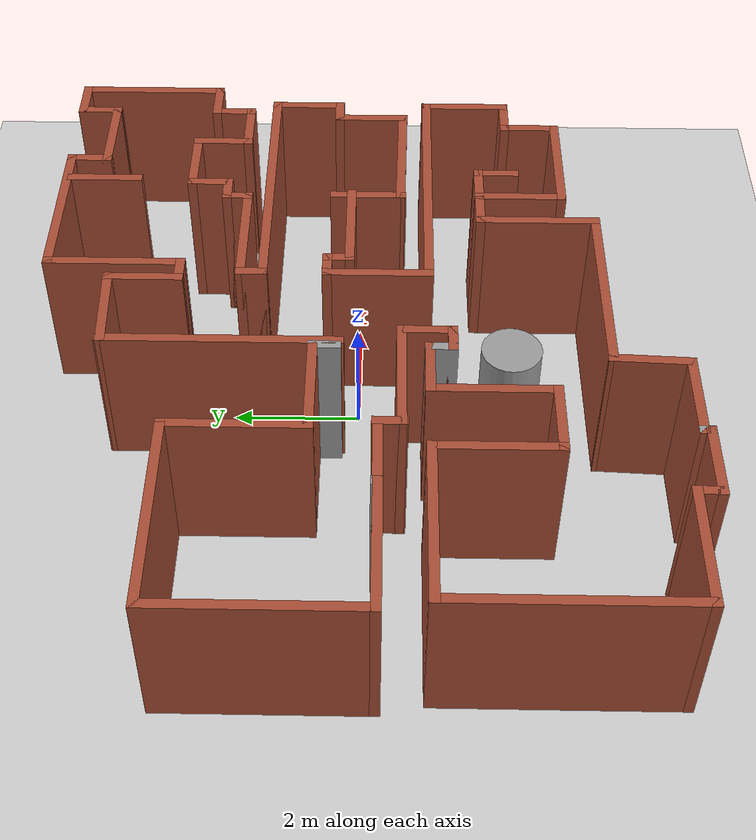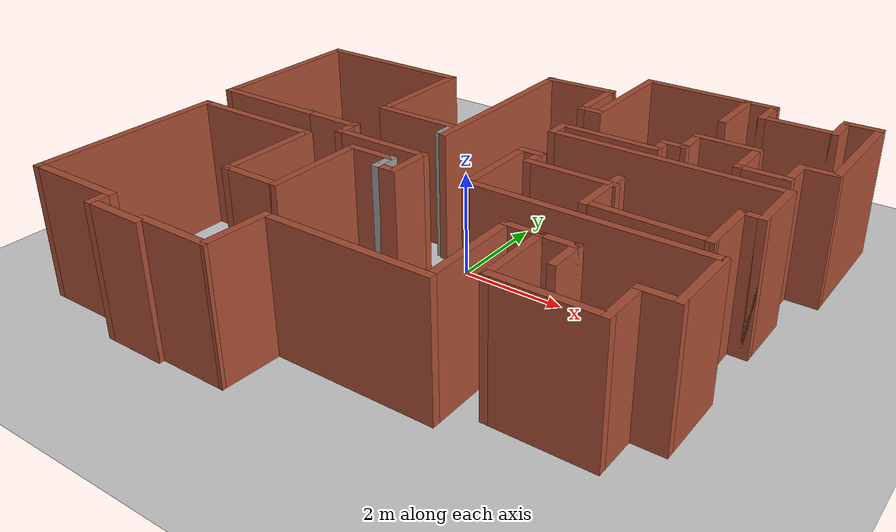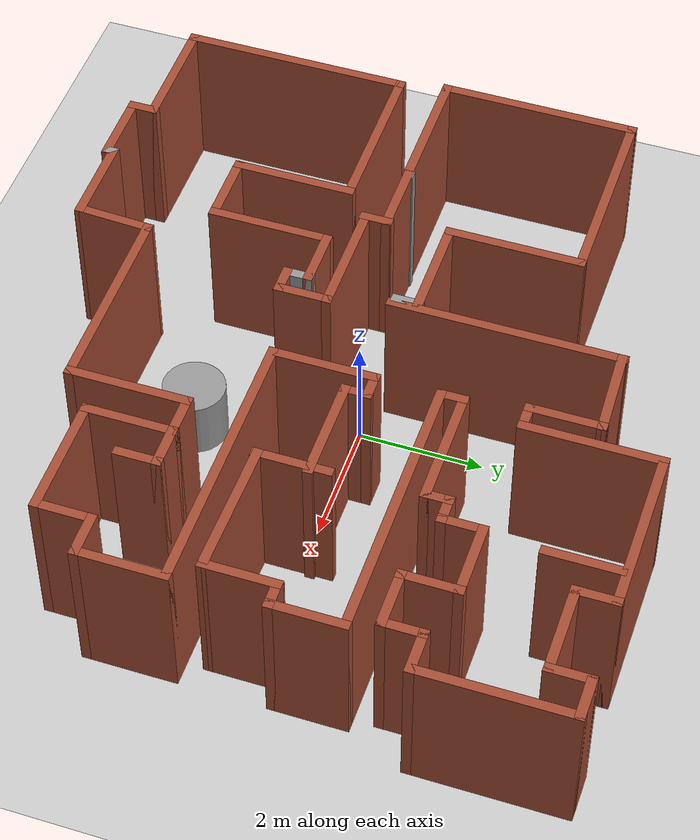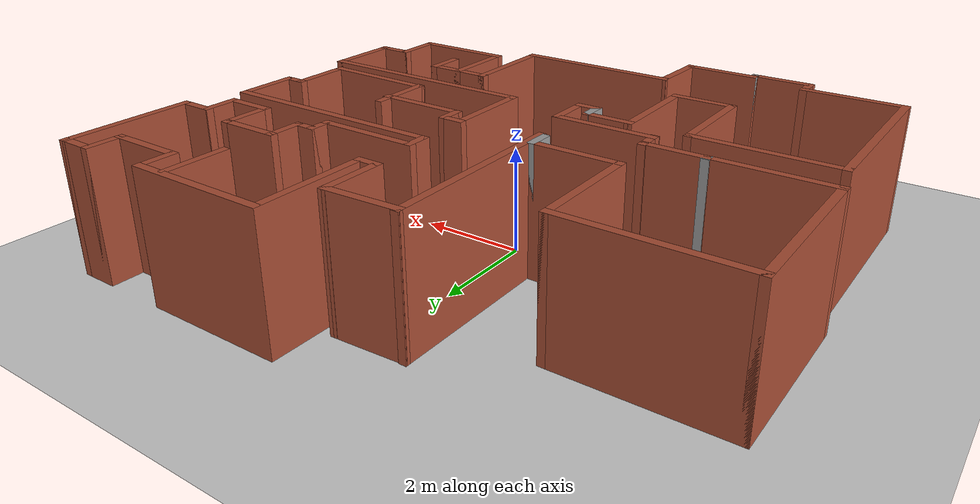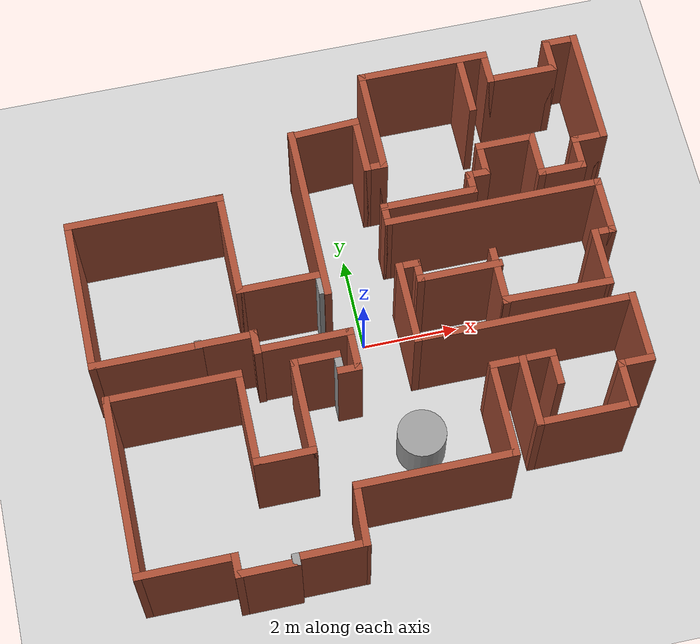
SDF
<sdf version="1.6">
 <world name="default">
  <model name="ground_plane">
   <static>1</static>
   <link name="link">
    <collision name="collision">
     <geometry><plane><normal>0 0 1</normal><size>100 100</size></plane></geometry>
     <surface><friction><ode><mu>100</mu><mu2>50</mu2></ode></friction></surface>
    </collision>
    <visual name="visual">
     <cast_shadows>0</cast_shadows>
     <geometry><plane><normal>0 0 1</normal><size>100 100</size></plane></geometry>
     <material>
      <script><uri>file://media/materials/scripts/gazebo.material</uri><name>Gazebo/Grey</name></script>
     </material>
    </visual>
   </link>
  </model>
  <model name="map_24">
   <pose>0.051596 -0.058533 0 0 -0 0</pose>
   <link name="Wall_0">
    <collision name="Wall_0_Collision">
     <geometry><box><size>1.5 0.15 2.5</size></box></geometry>
     <pose>0 0 1.25 0 -0 0</pose>
    </collision>
    <visual name="Wall_0_Visual">
     <pose>0 0 1.25 0 -0 0</pose>
     <geometry><box><size>1.5 0.15 2.5</size></box></geometry>
     <material>
      <script><uri>file://media/materials/scripts/gazebo.material</uri><name>Gazebo/Bricks</name></script>
      <ambient>1 1 1 1</ambient>
     </material>
     <meta><layer>0</layer></meta>
    </visual>
    <pose>-1.75 -4.875 0 0 -0 3.14159</pose>
   </link>
   <link name="Wall_1">
    <collision name="Wall_1_Collision">
     <geometry><box><size>0.25 0.15 2.5</size></box></geometry>
     <pose>0 0 1.25 0 -0 0</pose>
    </collision>
    <visual name="Wall_1_Visual">
     <pose>0 0 1.25 0 -0 0</pose>
     <geometry><box><size>0.25 0.15 2.5</size></box></geometry>
     <material>
      <script><uri>file://media/materials/scripts/gazebo.material</uri><name>Gazebo/Grey</name></script>
      <ambient>1 1 1 1</ambient>
     </material>
     <meta><layer>0</layer></meta>
    </visual>
    <pose>-2.425 -4.925 0 0 -0 -1.5708</pose>
   </link>
   <link name="Wall_10">
    <collision name="Wall_10_Collision">
     <geometry><box><size>1 0.15 2.5</size></box></geometry>
     <pose>0 0 1.25 0 -0 0</pose>
    </collision>
    <visual name="Wall_10_Visual">
     <pose>0 0 1.25 0 -0 0</pose>
     <geometry><box><size>1 0.15 2.5</size></box></geometry>
     <material>
      <script><uri>file://media/materials/scripts/gazebo.material</uri><name>Gazebo/Bricks</name></script>
      <ambient>1 1 1 1</ambient>
     </material>
     <meta><layer>0</layer></meta>
    </visual>
    <pose>-1.25 -1.025 0 0 -0 0</pose>
   </link>
   <link name="Wall_11">
    <collision name="Wall_11_Collision">
     <geometry><box><size>0.5 0.15 2.5</size></box></geometry>
     <pose>0 0 1.25 0 -0 0</pose>
    </collision>
    <visual name="Wall_11_Visual">
     <pose>0 0 1.25 0 -0 0</pose>
     <geometry><box><size>0.5 0.15 2.5</size></box></geometry>
     <material>
      <script><uri>file://media/materials/scripts/gazebo.material</uri><name>Gazebo/Grey</name></script>
      <ambient>1 1 1 1</ambient>
     </material>
     <meta><layer>0</layer></meta>
    </visual>
    <pose>-0.825 -1.2 0 0 -0 -1.5708</pose>
   </link>
   <link name="Wall_12">
    <collision name="Wall_12_Collision">
     <geometry><box><size>0.5 0.15 2.5</size></box></geometry>
     <pose>0 0 1.25 0 -0 0</pose>
    </collision>
    <visual name="Wall_12_Visual">
     <pose>0 0 1.25 0 -0 0</pose>
     <geometry><box><size>0.5 0.15 2.5</size></box></geometry>
     <material>
      <script><uri>file://media/materials/scripts/gazebo.material</uri><name>Gazebo/Bricks</name></script>
      <ambient>1 1 1 1</ambient>
     </material>
     <meta><layer>0</layer></meta>
    </visual>
    <pose>-0.65 -1.375 0 0 -0 0</pose>
   </link>
   <link name="Wall_13">
    <collision name="Wall_13_Collision">
     <geometry><box><size>0.899432 0.15 2.5</size></box></geometry>
     <pose>0 0 1.25 0 -0 0</pose>
    </collision>
    <visual name="Wall_13_Visual">
     <pose>0 0 1.25 0 -0 0</pose>
     <geometry><box><size>0.899432 0.15 2.5</size></box></geometry>
     <material>
      <script><uri>file://media/materials/scripts/gazebo.material</uri><name>Gazebo/Bricks</name></script>
      <ambient>1 1 1 1</ambient>
     </material>
     <meta><layer>0</layer></meta>
    </visual>
    <pose>-0.475 -1.00028 0 0 -0 1.5708</pose>
   </link>
   <link name="Wall_14">
    <collision name="Wall_14_Collision">
     <geometry><box><size>2 0.15 2.5</size></box></geometry>
     <pose>0 0 1.25 0 -0 0</pose>
    </collision>
    <visual name="Wall_14_Visual">
     <pose>0 0 1.25 0 -0 0</pose>
     <geometry><box><size>2 0.15 2.5</size></box></geometry>
     <material>
      <script><uri>file://media/materials/scripts/gazebo.material</uri><name>Gazebo/Bricks</name></script>
      <ambient>1 1 1 1</ambient>
     </material>
     <meta><layer>0</layer></meta>
    </visual>
    <pose>-1.4 -0.605454 0 0 -0 3.14159</pose>
   </link>
   <link name="Wall_15">
    <collision name="Wall_15_Collision">
     <geometry><box><size>0.528751 0.15 2.5</size></box></geometry>
     <pose>0 0 1.25 0 -0 0</pose>
    </collision>
    <visual name="Wall_15_Visual">
     <pose>0 0 1.25 0 -0 0</pose>
     <geometry><box><size>0.528751 0.15 2.5</size></box></geometry>
     <material>
      <script><uri>file://media/materials/scripts/gazebo.material</uri><name>Gazebo/Bricks</name></script>
      <ambient>1 1 1 1</ambient>
     </material>
     <meta><layer>0</layer></meta>
    </visual>
    <pose>-2.325 -0.436192 0 0 -0 1.5708</pose>
   </link>
   <link name="Wall_16">
    <collision name="Wall_16_Collision">
     <geometry><box><size>1.25 0.15 2.5</size></box></geometry>
     <pose>0 0 1.25 0 -0 0</pose>
    </collision>
    <visual name="Wall_16_Visual">
     <pose>0 0 1.25 0 -0 0</pose>
     <geometry><box><size>1.25 0.15 2.5</size></box></geometry>
     <material>
      <script><uri>file://media/materials/scripts/gazebo.material</uri><name>Gazebo/Bricks</name></script>
      <ambient>1 1 1 1</ambient>
     </material>
     <meta><layer>0</layer></meta>
    </visual>
    <pose>-2.875 -0.266931 0 0 -0 3.14159</pose>
   </link>
   <link name="Wall_17">
    <collision name="Wall_17_Collision">
     <geometry><box><size>0.178183 0.15 2.5</size></box></geometry>
     <pose>0 0 1.25 0 -0 0</pose>
    </collision>
    <visual name="Wall_17_Visual">
     <pose>0 0 1.25 0 -0 0</pose>
     <geometry><box><size>0.178183 0.15 2.5</size></box></geometry>
     <material>
      <script><uri>file://media/materials/scripts/gazebo.material</uri><name>Gazebo/Grey</name></script>
      <ambient>1 1 1 1</ambient>
     </material>
     <meta><layer>0</layer></meta>
    </visual>
    <pose>-3.425 -0.260908 0 0 -0 -1.5708</pose>
   </link>
   <link name="Wall_19">
    <collision name="Wall_19_Collision">
     <geometry><box><size>2.25 0.15 2.5</size></box></geometry>
     <pose>0 0 1.25 0 -0 0</pose>
    </collision>
    <visual name="Wall_19_Visual">
     <pose>0 0 1.25 0 -0 0</pose>
     <geometry><box><size>2.25 0.15 2.5</size></box></geometry>
     <material>
      <script><uri>file://media/materials/scripts/gazebo.material</uri><name>Gazebo/Bricks</name></script>
      <ambient>1 1 1 1</ambient>
     </material>
     <meta><layer>0</layer></meta>
    </visual>
    <pose>-4.475 -0.275 0 0 -0 3.14159</pose>
   </link>
   <link name="Wall_2">
    <collision name="Wall_2_Collision">
     <geometry><box><size>1.25 0.15 2.5</size></box></geometry>
     <pose>0 0 1.25 0 -0 0</pose>
    </collision>
    <visual name="Wall_2_Visual">
     <pose>0 0 1.25 0 -0 0</pose>
     <geometry><box><size>1.25 0.15 2.5</size></box></geometry>
     <material>
      <script><uri>file://media/materials/scripts/gazebo.material</uri><name>Gazebo/Bricks</name></script>
      <ambient>1 1 1 1</ambient>
     </material>
     <meta><layer>0</layer></meta>
    </visual>
    <pose>-2.975 -4.975 0 0 -0 3.14159</pose>
   </link>
   <link name="Wall_20">
    <collision name="Wall_20_Collision">
     <geometry><box><size>3.25 0.15 2.5</size></box></geometry>
     <pose>0 0 1.25 0 -0 0</pose>
    </collision>
    <visual name="Wall_20_Visual">
     <pose>0 0 1.25 0 -0 0</pose>
     <geometry><box><size>3.25 0.15 2.5</size></box></geometry>
     <material>
      <script><uri>file://media/materials/scripts/gazebo.material</uri><name>Gazebo/Bricks</name></script>
      <ambient>1 1 1 1</ambient>
     </material>
     <meta><layer>0</layer></meta>
    </visual>
    <pose>-5.525 1.275 0 0 -0 1.5708</pose>
   </link>
   <link name="Wall_21">
    <collision name="Wall_21_Collision">
     <geometry><box><size>3.25 0.15 2.5</size></box></geometry>
     <pose>0 0 1.25 0 -0 0</pose>
    </collision>
    <visual name="Wall_21_Visual">
     <pose>0 0 1.25 0 -0 0</pose>
     <geometry><box><size>3.25 0.15 2.5</size></box></geometry>
     <material>
      <script><uri>file://media/materials/scripts/gazebo.material</uri><name>Gazebo/Bricks</name></script>
      <ambient>1 1 1 1</ambient>
     </material>
     <meta><layer>0</layer></meta>
    </visual>
    <pose>-3.975 2.825 0 0 -0 0</pose>
   </link>
   <link name="Wall_22">
    <collision name="Wall_22_Collision">
     <geometry><box><size>2.25 0.15 2.5</size></box></geometry>
     <pose>0 0 1.25 0 -0 0</pose>
    </collision>
    <visual name="Wall_22_Visual">
     <pose>0 0 1.25 0 -0 0</pose>
     <geometry><box><size>2.25 0.15 2.5</size></box></geometry>
     <material>
      <script><uri>file://media/materials/scripts/gazebo.material</uri><name>Gazebo/Bricks</name></script>
      <ambient>1 1 1 1</ambient>
     </material>
     <meta><layer>0</layer></meta>
    </visual>
    <pose>-2.425 1.775 0 0 -0 -1.5708</pose>
   </link>
   <link name="Wall_23">
    <collision name="Wall_23_Collision">
     <geometry><box><size>1.75 0.15 2.5</size></box></geometry>
     <pose>0 0 1.25 0 -0 0</pose>
    </collision>
    <visual name="Wall_23_Visual">
     <pose>0 0 1.25 0 -0 0</pose>
     <geometry><box><size>1.75 0.15 2.5</size></box></geometry>
     <material>
      <script><uri>file://media/materials/scripts/gazebo.material</uri><name>Gazebo/Bricks</name></script>
      <ambient>1 1 1 1</ambient>
     </material>
     <meta><layer>0</layer></meta>
    </visual>
    <pose>-1.625 0.725 0 0 -0 0</pose>
   </link>
   <link name="Wall_24">
    <collision name="Wall_24_Collision">
     <geometry><box><size>0.5 0.15 2.5</size></box></geometry>
     <pose>0 0 1.25 0 -0 0</pose>
    </collision>
    <visual name="Wall_24_Visual">
     <pose>0 0 1.25 0 -0 0</pose>
     <geometry><box><size>0.5 0.15 2.5</size></box></geometry>
     <material>
      <script><uri>file://media/materials/scripts/gazebo.material</uri><name>Gazebo/Grey</name></script>
      <ambient>1 1 1 1</ambient>
     </material>
     <meta><layer>0</layer></meta>
    </visual>
    <pose>-0.825 0.55 0 0 -0 -1.5708</pose>
   </link>
   <link name="Wall_26">
    <collision name="Wall_26_Collision">
     <geometry><box><size>3.75 0.15 2.5</size></box></geometry>
     <pose>0 0 1.25 0 -0 0</pose>
    </collision>
    <visual name="Wall_26_Visual">
     <pose>0 0 1.25 0 -0 0</pose>
     <geometry><box><size>3.75 0.15 2.5</size></box></geometry>
     <material>
      <script><uri>file://media/materials/scripts/gazebo.material</uri><name>Gazebo/Bricks</name></script>
      <ambient>1 1 1 1</ambient>
     </material>
     <meta><layer>0</layer></meta>
    </visual>
    <pose>-0.725 2.13477 0 0 -0 1.5708</pose>
   </link>
   <link name="Wall_27">
    <collision name="Wall_27_Collision">
     <geometry><box><size>1.50135 0.15 2.5</size></box></geometry>
     <pose>0 0 1.25 0 -0 0</pose>
    </collision>
    <visual name="Wall_27_Visual">
     <pose>0 0 1.25 0 -0 0</pose>
     <geometry><box><size>1.50135 0.15 2.5</size></box></geometry>
     <material>
      <script><uri>file://media/materials/scripts/gazebo.material</uri><name>Gazebo/Bricks</name></script>
      <ambient>1 1 1 1</ambient>
     </material>
     <meta><layer>0</layer></meta>
    </visual>
    <pose>-0.05 3.94483 0 0 -0 0.044667</pose>
   </link>
   <link name="Wall_28">
    <collision name="Wall_28_Collision">
     <geometry><box><size>1.25 0.15 2.5</size></box></geometry>
     <pose>0 0 1.25 0 -0 0</pose>
    </collision>
    <visual name="Wall_28_Visual">
     <pose>0 0 1.25 0 -0 0</pose>
     <geometry><box><size>1.25 0.15 2.5</size></box></geometry>
     <material>
      <script><uri>file://media/materials/scripts/gazebo.material</uri><name>Gazebo/Bricks</name></script>
      <ambient>1 1 1 1</ambient>
     </material>
     <meta><layer>0</layer></meta>
    </visual>
    <pose>0.625 3.425 0 0 -0 -1.5708</pose>
   </link>
   <link name="Wall_29">
    <collision name="Wall_29_Collision">
     <geometry><box><size>0.5 0.15 2.5</size></box></geometry>
     <pose>0 0 1.25 0 -0 0</pose>
    </collision>
    <visual name="Wall_29_Visual">
     <pose>0 0 1.25 0 -0 0</pose>
     <geometry><box><size>0.5 0.15 2.5</size></box></geometry>
     <material>
      <script><uri>file://media/materials/scripts/gazebo.material</uri><name>Gazebo/Bricks</name></script>
      <ambient>1 1 1 1</ambient>
     </material>
     <meta><layer>0</layer></meta>
    </visual>
    <pose>0.8 2.875 0 0 -0 0</pose>
   </link>
   <link name="Wall_3">
    <collision name="Wall_3_Collision">
     <geometry><box><size>0.5 0.15 2.5</size></box></geometry>
     <pose>0 0 1.25 0 -0 0</pose>
    </collision>
    <visual name="Wall_3_Visual">
     <pose>0 0 1.25 0 -0 0</pose>
     <geometry><box><size>0.5 0.15 2.5</size></box></geometry>
     <material>
      <script><uri>file://media/materials/scripts/gazebo.material</uri><name>Gazebo/Bricks</name></script>
      <ambient>1 1 1 1</ambient>
     </material>
     <meta><layer>0</layer></meta>
    </visual>
    <pose>-3.525 -4.8 0 0 -0 1.5708</pose>
   </link>
   <link name="Wall_30">
    <collision name="Wall_30_Collision">
     <geometry><box><size>2.25 0.15 2.5</size></box></geometry>
     <pose>0 0 1.25 0 -0 0</pose>
    </collision>
    <visual name="Wall_30_Visual">
     <pose>0 0 1.25 0 -0 0</pose>
     <geometry><box><size>2.25 0.15 2.5</size></box></geometry>
     <material>
      <script><uri>file://media/materials/scripts/gazebo.material</uri><name>Gazebo/Bricks</name></script>
      <ambient>1 1 1 1</ambient>
     </material>
     <meta><layer>0</layer></meta>
    </visual>
    <pose>0.975 3.925 0 0 -0 1.5708</pose>
   </link>
   <link name="Wall_31">
    <collision name="Wall_31_Collision">
     <geometry><box><size>2.75 0.15 2.5</size></box></geometry>
     <pose>0 0 1.25 0 -0 0</pose>
    </collision>
    <visual name="Wall_31_Visual">
     <pose>0 0 1.25 0 -0 0</pose>
     <geometry><box><size>2.75 0.15 2.5</size></box></geometry>
     <material>
      <script><uri>file://media/materials/scripts/gazebo.material</uri><name>Gazebo/Bricks</name></script>
      <ambient>1 1 1 1</ambient>
     </material>
     <meta><layer>0</layer></meta>
    </visual>
    <pose>2.275 4.975 0 0 -0 0</pose>
   </link>
   <link name="Wall_32">
    <collision name="Wall_32_Collision">
     <geometry><box><size>0.75 0.15 2.5</size></box></geometry>
     <pose>0 0 1.25 0 -0 0</pose>
    </collision>
    <visual name="Wall_32_Visual">
     <pose>0 0 1.25 0 -0 0</pose>
     <geometry><box><size>0.75 0.15 2.5</size></box></geometry>
     <material>
      <script><uri>file://media/materials/scripts/gazebo.material</uri><name>Gazebo/Bricks</name></script>
      <ambient>1 1 1 1</ambient>
     </material>
     <meta><layer>0</layer></meta>
    </visual>
    <pose>3.575 4.675 0 0 -0 -1.5708</pose>
   </link>
   <link name="Wall_33">
    <collision name="Wall_33_Collision">
     <geometry><box><size>1.5 0.15 2.5</size></box></geometry>
     <pose>0 0 1.25 0 -0 0</pose>
    </collision>
    <visual name="Wall_33_Visual">
     <pose>0 0 1.25 0 -0 0</pose>
     <geometry><box><size>1.5 0.15 2.5</size></box></geometry>
     <material>
      <script><uri>file://media/materials/scripts/gazebo.material</uri><name>Gazebo/Bricks</name></script>
      <ambient>1 1 1 1</ambient>
     </material>
     <meta><layer>0</layer></meta>
    </visual>
    <pose>4.25 4.375 0 0 -0 0</pose>
   </link>
   <link name="Wall_38">
    <collision name="Wall_38_Collision">
     <geometry><box><size>0.75 0.15 2.5</size></box></geometry>
     <pose>0 0 1.25 0 -0 0</pose>
    </collision>
    <visual name="Wall_38_Visual">
     <pose>0 0 1.25 0 -0 0</pose>
     <geometry><box><size>0.75 0.15 2.5</size></box></geometry>
     <material>
      <script><uri>file://media/materials/scripts/gazebo.material</uri><name>Gazebo/Bricks</name></script>
      <ambient>1 1 1 1</ambient>
     </material>
     <meta><layer>0</layer></meta>
    </visual>
    <pose>4.925 4.675 0 0 -0 1.5708</pose>
   </link>
   <link name="Wall_39">
    <collision name="Wall_39_Collision">
     <geometry><box><size>0.75 0.15 2.5</size></box></geometry>
     <pose>0 0 1.25 0 -0 0</pose>
    </collision>
    <visual name="Wall_39_Visual">
     <pose>0 0 1.25 0 -0 0</pose>
     <geometry><box><size>0.75 0.15 2.5</size></box></geometry>
     <material>
      <script><uri>file://media/materials/scripts/gazebo.material</uri><name>Gazebo/Bricks</name></script>
      <ambient>1 1 1 1</ambient>
     </material>
     <meta><layer>0</layer></meta>
    </visual>
    <pose>5.225 4.975 0 0 -0 0</pose>
   </link>
   <link name="Wall_4">
    <collision name="Wall_4_Collision">
     <geometry><box><size>2 0.15 2.5</size></box></geometry>
     <pose>0 0 1.25 0 -0 0</pose>
    </collision>
    <visual name="Wall_4_Visual">
     <pose>0 0 1.25 0 -0 0</pose>
     <geometry><box><size>2 0.15 2.5</size></box></geometry>
     <material>
      <script><uri>file://media/materials/scripts/gazebo.material</uri><name>Gazebo/Bricks</name></script>
      <ambient>1 1 1 1</ambient>
     </material>
     <meta><layer>0</layer></meta>
    </visual>
    <pose>-4.45 -4.625 0 0 -0 3.14159</pose>
   </link>
   <link name="Wall_40">
    <collision name="Wall_40_Collision">
     <geometry><box><size>2.5 0.15 2.5</size></box></geometry>
     <pose>0 0 1.25 0 -0 0</pose>
    </collision>
    <visual name="Wall_40_Visual">
     <pose>0 0 1.25 0 -0 0</pose>
     <geometry><box><size>2.5 0.15 2.5</size></box></geometry>
     <material>
      <script><uri>file://media/materials/scripts/gazebo.material</uri><name>Gazebo/Bricks</name></script>
      <ambient>1 1 1 1</ambient>
     </material>
     <meta><layer>0</layer></meta>
    </visual>
    <pose>5.525 3.8 0 0 -0 -1.5708</pose>
   </link>
   <link name="Wall_41">
    <collision name="Wall_41_Collision">
     <geometry><box><size>0.75 0.15 2.5</size></box></geometry>
     <pose>0 0 1.25 0 -0 0</pose>
    </collision>
    <visual name="Wall_41_Visual">
     <pose>0 0 1.25 0 -0 0</pose>
     <geometry><box><size>0.75 0.15 2.5</size></box></geometry>
     <material>
      <script><uri>file://media/materials/scripts/gazebo.material</uri><name>Gazebo/Bricks</name></script>
      <ambient>1 1 1 1</ambient>
     </material>
     <meta><layer>0</layer></meta>
    </visual>
    <pose>5.225 2.625 0 0 -0 3.14159</pose>
   </link>
   <link name="Wall_42">
    <collision name="Wall_42_Collision">
     <geometry><box><size>0.75 0.15 2.5</size></box></geometry>
     <pose>0 0 1.25 0 -0 0</pose>
    </collision>
    <visual name="Wall_42_Visual">
     <pose>0 0 1.25 0 -0 0</pose>
     <geometry><box><size>0.75 0.15 2.5</size></box></geometry>
     <material>
      <script><uri>file://media/materials/scripts/gazebo.material</uri><name>Gazebo/Bricks</name></script>
      <ambient>1 1 1 1</ambient>
     </material>
     <meta><layer>0</layer></meta>
    </visual>
    <pose>4.925 2.325 0 0 -0 -1.5708</pose>
   </link>
   <link name="Wall_43">
    <collision name="Wall_43_Collision">
     <geometry><box><size>1 0.15 2.5</size></box></geometry>
     <pose>0 0 1.25 0 -0 0</pose>
    </collision>
    <visual name="Wall_43_Visual">
     <pose>0 0 1.25 0 -0 0</pose>
     <geometry><box><size>1 0.15 2.5</size></box></geometry>
     <material>
      <script><uri>file://media/materials/scripts/gazebo.material</uri><name>Gazebo/Bricks</name></script>
      <ambient>1 1 1 1</ambient>
     </material>
     <meta><layer>0</layer></meta>
    </visual>
    <pose>4.5 2.025 0 0 -0 3.14159</pose>
   </link>
   <link name="Wall_44">
    <collision name="Wall_44_Collision">
     <geometry><box><size>1 0.15 2.5</size></box></geometry>
     <pose>0 0 1.25 0 -0 0</pose>
    </collision>
    <visual name="Wall_44_Visual">
     <pose>0 0 1.25 0 -0 0</pose>
     <geometry><box><size>1 0.15 2.5</size></box></geometry>
     <material>
      <script><uri>file://media/materials/scripts/gazebo.material</uri><name>Gazebo/Bricks</name></script>
      <ambient>1 1 1 1</ambient>
     </material>
     <meta><layer>0</layer></meta>
    </visual>
    <pose>4.075 2.45 0 0 -0 1.5708</pose>
   </link>
   <link name="Wall_45">
    <collision name="Wall_45_Collision">
     <geometry><box><size>1.25 0.15 2.5</size></box></geometry>
     <pose>0 0 1.25 0 -0 0</pose>
    </collision>
    <visual name="Wall_45_Visual">
     <pose>0 0 1.25 0 -0 0</pose>
     <geometry><box><size>1.25 0.15 2.5</size></box></geometry>
     <material>
      <script><uri>file://media/materials/scripts/gazebo.material</uri><name>Gazebo/Bricks</name></script>
      <ambient>1 1 1 1</ambient>
     </material>
     <meta><layer>0</layer></meta>
    </visual>
    <pose>3.525 2.875 0 0 -0 3.14159</pose>
   </link>
   <link name="Wall_46">
    <collision name="Wall_46_Collision">
     <geometry><box><size>0.75 0.15 2.5</size></box></geometry>
     <pose>0 0 1.25 0 -0 0</pose>
    </collision>
    <visual name="Wall_46_Visual">
     <pose>0 0 1.25 0 -0 0</pose>
     <geometry><box><size>0.75 0.15 2.5</size></box></geometry>
     <material>
      <script><uri>file://media/materials/scripts/gazebo.material</uri><name>Gazebo/Bricks</name></script>
      <ambient>1 1 1 1</ambient>
     </material>
     <meta><layer>0</layer></meta>
    </visual>
    <pose>2.975 2.575 0 0 -0 -1.5708</pose>
   </link>
   <link name="Wall_47">
    <collision name="Wall_47_Collision">
     <geometry><box><size>0.5 0.15 2.5</size></box></geometry>
     <pose>0 0 1.25 0 -0 0</pose>
    </collision>
    <visual name="Wall_47_Visual">
     <pose>0 0 1.25 0 -0 0</pose>
     <geometry><box><size>0.5 0.15 2.5</size></box></geometry>
     <material>
      <script><uri>file://media/materials/scripts/gazebo.material</uri><name>Gazebo/Bricks</name></script>
      <ambient>1 1 1 1</ambient>
     </material>
     <meta><layer>0</layer></meta>
    </visual>
    <pose>2.8 2.275 0 0 -0 3.14159</pose>
   </link>
   <link name="Wall_48">
    <collision name="Wall_48_Collision">
     <geometry><box><size>0.5 0.15 2.5</size></box></geometry>
     <pose>0 0 1.25 0 -0 0</pose>
    </collision>
    <visual name="Wall_48_Visual">
     <pose>0 0 1.25 0 -0 0</pose>
     <geometry><box><size>0.5 0.15 2.5</size></box></geometry>
     <material>
      <script><uri>file://media/materials/scripts/gazebo.material</uri><name>Gazebo/Bricks</name></script>
      <ambient>1 1 1 1</ambient>
     </material>
     <meta><layer>0</layer></meta>
    </visual>
    <pose>2.625 2.1 0 0 -0 -1.5708</pose>
   </link>
   <link name="Wall_49">
    <collision name="Wall_49_Collision">
     <geometry><box><size>2 0.15 2.5</size></box></geometry>
     <pose>0 0 1.25 0 -0 0</pose>
    </collision>
    <visual name="Wall_49_Visual">
     <pose>0 0 1.25 0 -0 0</pose>
     <geometry><box><size>2 0.15 2.5</size></box></geometry>
     <material>
      <script><uri>file://media/materials/scripts/gazebo.material</uri><name>Gazebo/Bricks</name></script>
      <ambient>1 1 1 1</ambient>
     </material>
     <meta><layer>0</layer></meta>
    </visual>
    <pose>1.7 1.925 0 0 -0 3.14159</pose>
   </link>
   <link name="Wall_5">
    <collision name="Wall_5_Collision">
     <geometry><box><size>3.75 0.15 2.5</size></box></geometry>
     <pose>0 0 1.25 0 -0 0</pose>
    </collision>
    <visual name="Wall_5_Visual">
     <pose>0 0 1.25 0 -0 0</pose>
     <geometry><box><size>3.75 0.15 2.5</size></box></geometry>
     <material>
      <script><uri>file://media/materials/scripts/gazebo.material</uri><name>Gazebo/Bricks</name></script>
      <ambient>1 1 1 1</ambient>
     </material>
     <meta><layer>0</layer></meta>
    </visual>
    <pose>-5.375 -2.825 0 0 -0 1.5708</pose>
   </link>
   <link name="Wall_51">
    <collision name="Wall_51_Collision">
     <geometry><box><size>1.25 0.15 2.5</size></box></geometry>
     <pose>0 0 1.25 0 -0 0</pose>
    </collision>
    <visual name="Wall_51_Visual">
     <pose>0 0 1.25 0 -0 0</pose>
     <geometry><box><size>1.25 0.15 2.5</size></box></geometry>
     <material>
      <script><uri>file://media/materials/scripts/gazebo.material</uri><name>Gazebo/Bricks</name></script>
      <ambient>1 1 1 1</ambient>
     </material>
     <meta><layer>0</layer></meta>
    </visual>
    <pose>3.05342 4.34595 0 0 -0 -1.5708</pose>
   </link>
   <link name="Wall_53">
    <collision name="Wall_53_Collision">
     <geometry><box><size>0.5 0.15 2.5</size></box></geometry>
     <pose>0 0 1.25 0 -0 0</pose>
    </collision>
    <visual name="Wall_53_Visual">
     <pose>0 0 1.25 0 -0 0</pose>
     <geometry><box><size>0.5 0.15 2.5</size></box></geometry>
     <material>
      <script><uri>file://media/materials/scripts/gazebo.material</uri><name>Gazebo/Bricks</name></script>
      <ambient>1 1 1 1</ambient>
     </material>
     <meta><layer>0</layer></meta>
    </visual>
    <pose>0.775 1.75 0 0 -0 -1.5708</pose>
   </link>
   <link name="Wall_54">
    <collision name="Wall_54_Collision">
     <geometry><box><size>4.5 0.15 2.5</size></box></geometry>
     <pose>0 0 1.25 0 -0 0</pose>
    </collision>
    <visual name="Wall_54_Visual">
     <pose>0 0 1.25 0 -0 0</pose>
     <geometry><box><size>4.5 0.15 2.5</size></box></geometry>
     <material>
      <script><uri>file://media/materials/scripts/gazebo.material</uri><name>Gazebo/Bricks</name></script>
      <ambient>1 1 1 1</ambient>
     </material>
     <meta><layer>0</layer></meta>
    </visual>
    <pose>2.95 1.575 0 0 -0 0</pose>
   </link>
   <link name="Wall_55">
    <collision name="Wall_55_Collision">
     <geometry><box><size>1.25 0.15 2.5</size></box></geometry>
     <pose>0 0 1.25 0 -0 0</pose>
    </collision>
    <visual name="Wall_55_Visual">
     <pose>0 0 1.25 0 -0 0</pose>
     <geometry><box><size>1.25 0.15 2.5</size></box></geometry>
     <material>
      <script><uri>file://media/materials/scripts/gazebo.material</uri><name>Gazebo/Bricks</name></script>
      <ambient>1 1 1 1</ambient>
     </material>
     <meta><layer>0</layer></meta>
    </visual>
    <pose>5.125 1.025 0 0 -0 -1.5708</pose>
   </link>
   <link name="Wall_56">
    <collision name="Wall_56_Collision">
     <geometry><box><size>0.5 0.15 2.5</size></box></geometry>
     <pose>0 0 1.25 0 -0 0</pose>
    </collision>
    <visual name="Wall_56_Visual">
     <pose>0 0 1.25 0 -0 0</pose>
     <geometry><box><size>0.5 0.15 2.5</size></box></geometry>
     <material>
      <script><uri>file://media/materials/scripts/gazebo.material</uri><name>Gazebo/Bricks</name></script>
      <ambient>1 1 1 1</ambient>
     </material>
     <meta><layer>0</layer></meta>
    </visual>
    <pose>4.95 0.475 0 0 -0 3.14159</pose>
   </link>
   <link name="Wall_57">
    <collision name="Wall_57_Collision">
     <geometry><box><size>1.25 0.15 2.5</size></box></geometry>
     <pose>0 0 1.25 0 -0 0</pose>
    </collision>
    <visual name="Wall_57_Visual">
     <pose>0 0 1.25 0 -0 0</pose>
     <geometry><box><size>1.25 0.15 2.5</size></box></geometry>
     <material>
      <script><uri>file://media/materials/scripts/gazebo.material</uri><name>Gazebo/Bricks</name></script>
      <ambient>1 1 1 1</ambient>
     </material>
     <meta><layer>0</layer></meta>
    </visual>
    <pose>4.775 -0.075 0 0 -0 -1.5708</pose>
   </link>
   <link name="Wall_58">
    <collision name="Wall_58_Collision">
     <geometry><box><size>2.25 0.15 2.5</size></box></geometry>
     <pose>0 0 1.25 0 -0 0</pose>
    </collision>
    <visual name="Wall_58_Visual">
     <pose>0 0 1.25 0 -0 0</pose>
     <geometry><box><size>2.25 0.15 2.5</size></box></geometry>
     <material>
      <script><uri>file://media/materials/scripts/gazebo.material</uri><name>Gazebo/Bricks</name></script>
      <ambient>1 1 1 1</ambient>
     </material>
     <meta><layer>0</layer></meta>
    </visual>
    <pose>3.725 -0.604886 0 0 -0 3.12244</pose>
   </link>
   <link name="Wall_59">
    <collision name="Wall_59_Collision">
     <geometry><box><size>1.25 0.15 2.5</size></box></geometry>
     <pose>0 0 1.25 0 -0 0</pose>
    </collision>
    <visual name="Wall_59_Visual">
     <pose>0 0 1.25 0 -0 0</pose>
     <geometry><box><size>1.25 0.15 2.5</size></box></geometry>
     <material>
      <script><uri>file://media/materials/scripts/gazebo.material</uri><name>Gazebo/Bricks</name></script>
      <ambient>1 1 1 1</ambient>
     </material>
     <meta><layer>0</layer></meta>
    </visual>
    <pose>2.675 -0.054886 0 0 -0 1.5708</pose>
   </link>
   <link name="Wall_6">
    <collision name="Wall_6_Collision">
     <geometry><box><size>2.75 0.15 2.5</size></box></geometry>
     <pose>0 0 1.25 0 -0 0</pose>
    </collision>
    <visual name="Wall_6_Visual">
     <pose>0 0 1.25 0 -0 0</pose>
     <geometry><box><size>2.75 0.15 2.5</size></box></geometry>
     <material>
      <script><uri>file://media/materials/scripts/gazebo.material</uri><name>Gazebo/Bricks</name></script>
      <ambient>1 1 1 1</ambient>
     </material>
     <meta><layer>0</layer></meta>
    </visual>
    <pose>-4.075 -1.025 0 0 -0 0</pose>
   </link>
   <link name="Wall_61">
    <collision name="Wall_61_Collision">
     <geometry><box><size>1.75 0.15 2.5</size></box></geometry>
     <pose>0 0 1.25 0 -0 0</pose>
    </collision>
    <visual name="Wall_61_Visual">
     <pose>0 0 1.25 0 -0 0</pose>
     <geometry><box><size>1.75 0.15 2.5</size></box></geometry>
     <material>
      <script><uri>file://media/materials/scripts/gazebo.material</uri><name>Gazebo/Bricks</name></script>
      <ambient>1 1 1 1</ambient>
     </material>
     <meta><layer>0</layer></meta>
    </visual>
    <pose>1.92995 0.218217 0 0 -0 3.14159</pose>
   </link>
   <link name="Wall_62">
    <collision name="Wall_62_Collision">
     <geometry><box><size>0.5 0.15 2.5</size></box></geometry>
     <pose>0 0 1.25 0 -0 0</pose>
    </collision>
    <visual name="Wall_62_Visual">
     <pose>0 0 1.25 0 -0 0</pose>
     <geometry><box><size>0.5 0.15 2.5</size></box></geometry>
     <material>
      <script><uri>file://media/materials/scripts/gazebo.material</uri><name>Gazebo/Bricks</name></script>
      <ambient>1 1 1 1</ambient>
     </material>
     <meta><layer>0</layer></meta>
    </visual>
    <pose>1.12995 0.393217 0 0 -0 1.5708</pose>
   </link>
   <link name="Wall_63">
    <collision name="Wall_63_Collision">
     <geometry><box><size>0.5 0.15 2.5</size></box></geometry>
     <pose>0 0 1.25 0 -0 0</pose>
    </collision>
    <visual name="Wall_63_Visual">
     <pose>0 0 1.25 0 -0 0</pose>
     <geometry><box><size>0.5 0.15 2.5</size></box></geometry>
     <material>
      <script><uri>file://media/materials/scripts/gazebo.material</uri><name>Gazebo/Bricks</name></script>
      <ambient>1 1 1 1</ambient>
     </material>
     <meta><layer>0</layer></meta>
    </visual>
    <pose>0.954952 0.568217 0 0 -0 3.14159</pose>
   </link>
   <link name="Wall_64">
    <collision name="Wall_64_Collision">
     <geometry><box><size>1.75 0.15 2.5</size></box></geometry>
     <pose>0 0 1.25 0 -0 0</pose>
    </collision>
    <visual name="Wall_64_Visual">
     <pose>0 0 1.25 0 -0 0</pose>
     <geometry><box><size>1.75 0.15 2.5</size></box></geometry>
     <material>
      <script><uri>file://media/materials/scripts/gazebo.material</uri><name>Gazebo/Bricks</name></script>
      <ambient>1 1 1 1</ambient>
     </material>
     <meta><layer>0</layer></meta>
    </visual>
    <pose>0.779952 -0.231783 0 0 -0 -1.5708</pose>
   </link>
   <link name="Wall_65">
    <collision name="Wall_65_Collision">
     <geometry><box><size>4.5 0.15 2.5</size></box></geometry>
     <pose>0 0 1.25 0 -0 0</pose>
    </collision>
    <visual name="Wall_65_Visual">
     <pose>0 0 1.25 0 -0 0</pose>
     <geometry><box><size>4.5 0.15 2.5</size></box></geometry>
     <material>
      <script><uri>file://media/materials/scripts/gazebo.material</uri><name>Gazebo/Bricks</name></script>
      <ambient>1 1 1 1</ambient>
     </material>
     <meta><layer>0</layer></meta>
    </visual>
    <pose>2.95495 -1.03178 0 0 -0 0</pose>
   </link>
   <link name="Wall_66">
    <collision name="Wall_66_Collision">
     <geometry><box><size>1.5 0.15 2.5</size></box></geometry>
     <pose>0 0 1.25 0 -0 0</pose>
    </collision>
    <visual name="Wall_66_Visual">
     <pose>0 0 1.25 0 -0 0</pose>
     <geometry><box><size>1.5 0.15 2.5</size></box></geometry>
     <material>
      <script><uri>file://media/materials/scripts/gazebo.material</uri><name>Gazebo/Bricks</name></script>
      <ambient>1 1 1 1</ambient>
     </material>
     <meta><layer>0</layer></meta>
    </visual>
    <pose>5.12995 -1.70678 0 0 -0 -1.5708</pose>
   </link>
   <link name="Wall_67">
    <collision name="Wall_67_Collision">
     <geometry><box><size>0.75 0.15 2.5</size></box></geometry>
     <pose>0 0 1.25 0 -0 0</pose>
    </collision>
    <visual name="Wall_67_Visual">
     <pose>0 0 1.25 0 -0 0</pose>
     <geometry><box><size>0.75 0.15 2.5</size></box></geometry>
     <material>
      <script><uri>file://media/materials/scripts/gazebo.material</uri><name>Gazebo/Bricks</name></script>
      <ambient>1 1 1 1</ambient>
     </material>
     <meta><layer>0</layer></meta>
    </visual>
    <pose>4.82995 -2.38178 0 0 -0 3.14159</pose>
   </link>
   <link name="Wall_69">
    <collision name="Wall_69_Collision">
     <geometry><box><size>1 0.15 2.5</size></box></geometry>
     <pose>0 0 1.25 0 -0 0</pose>
    </collision>
    <visual name="Wall_69_Visual">
     <pose>0 0 1.25 0 -0 0</pose>
     <geometry><box><size>1 0.15 2.5</size></box></geometry>
     <material>
      <script><uri>file://media/materials/scripts/gazebo.material</uri><name>Gazebo/Bricks</name></script>
      <ambient>1 1 1 1</ambient>
     </material>
     <meta><layer>0</layer></meta>
    </visual>
    <pose>4.52995 -2.80678 0 0 -0 -1.5708</pose>
   </link>
   <link name="Wall_7">
    <collision name="Wall_7_Collision">
     <geometry><box><size>2 0.15 2.5</size></box></geometry>
     <pose>0 0 1.25 0 -0 0</pose>
    </collision>
    <visual name="Wall_7_Visual">
     <pose>0 0 1.25 0 -0 0</pose>
     <geometry><box><size>2 0.15 2.5</size></box></geometry>
     <material>
      <script><uri>file://media/materials/scripts/gazebo.material</uri><name>Gazebo/Bricks</name></script>
      <ambient>1 1 1 1</ambient>
     </material>
     <meta><layer>0</layer></meta>
    </visual>
    <pose>-2.775 -1.95 0 0 -0 -1.5708</pose>
   </link>
   <link name="Wall_70">
    <collision name="Wall_70_Collision">
     <geometry><box><size>2 0.15 2.5</size></box></geometry>
     <pose>0 0 1.25 0 -0 0</pose>
    </collision>
    <visual name="Wall_70_Visual">
     <pose>0 0 1.25 0 -0 0</pose>
     <geometry><box><size>2 0.15 2.5</size></box></geometry>
     <material>
      <script><uri>file://media/materials/scripts/gazebo.material</uri><name>Gazebo/Bricks</name></script>
      <ambient>1 1 1 1</ambient>
     </material>
     <meta><layer>0</layer></meta>
    </visual>
    <pose>3.60495 -3.23178 0 0 -0 3.14159</pose>
   </link>
   <link name="Wall_71">
    <collision name="Wall_71_Collision">
     <geometry><box><size>1.5 0.15 2.5</size></box></geometry>
     <pose>0 0 1.25 0 -0 0</pose>
    </collision>
    <visual name="Wall_71_Visual">
     <pose>0 0 1.25 0 -0 0</pose>
     <geometry><box><size>1.5 0.15 2.5</size></box></geometry>
     <material>
      <script><uri>file://media/materials/scripts/gazebo.material</uri><name>Gazebo/Bricks</name></script>
      <ambient>1 1 1 1</ambient>
     </material>
     <meta><layer>0</layer></meta>
    </visual>
    <pose>2.67995 -2.55678 0 0 -0 1.5708</pose>
   </link>
   <link name="Wall_72">
    <collision name="Wall_72_Collision">
     <geometry><box><size>0.75 0.15 2.5</size></box></geometry>
     <pose>0 0 1.25 0 -0 0</pose>
    </collision>
    <visual name="Wall_72_Visual">
     <pose>0 0 1.25 0 -0 0</pose>
     <geometry><box><size>0.75 0.15 2.5</size></box></geometry>
     <material>
      <script><uri>file://media/materials/scripts/gazebo.material</uri><name>Gazebo/Bricks</name></script>
      <ambient>1 1 1 1</ambient>
     </material>
     <meta><layer>0</layer></meta>
    </visual>
    <pose>2.37995 -1.88178 0 0 -0 3.14159</pose>
   </link>
   <link name="Wall_73">
    <collision name="Wall_73_Collision">
     <geometry><box><size>2 0.15 2.5</size></box></geometry>
     <pose>0 0 1.25 0 -0 0</pose>
    </collision>
    <visual name="Wall_73_Visual">
     <pose>0 0 1.25 0 -0 0</pose>
     <geometry><box><size>2 0.15 2.5</size></box></geometry>
     <material>
      <script><uri>file://media/materials/scripts/gazebo.material</uri><name>Gazebo/Bricks</name></script>
      <ambient>1 1 1 1</ambient>
     </material>
     <meta><layer>0</layer></meta>
    </visual>
    <pose>2.07995 -2.80678 0 0 -0 -1.5708</pose>
   </link>
   <link name="Wall_74">
    <collision name="Wall_74_Collision">
     <geometry><box><size>3.25 0.15 2.5</size></box></geometry>
     <pose>0 0 1.25 0 -0 0</pose>
    </collision>
    <visual name="Wall_74_Visual">
     <pose>0 0 1.25 0 -0 0</pose>
     <geometry><box><size>3.25 0.15 2.5</size></box></geometry>
     <material>
      <script><uri>file://media/materials/scripts/gazebo.material</uri><name>Gazebo/Bricks</name></script>
      <ambient>1 1 1 1</ambient>
     </material>
     <meta><layer>0</layer></meta>
    </visual>
    <pose>0.529952 -3.73178 0 0 -0 3.14159</pose>
   </link>
   <link name="Wall_75">
    <collision name="Wall_75_Collision">
     <geometry><box><size>1.29454 0.15 2.5</size></box></geometry>
     <pose>0 0 1.25 0 -0 0</pose>
    </collision>
    <visual name="Wall_75_Visual">
     <pose>0 0 1.25 0 -0 0</pose>
     <geometry><box><size>1.29454 0.15 2.5</size></box></geometry>
     <material>
      <script><uri>file://media/materials/scripts/gazebo.material</uri><name>Gazebo/Bricks</name></script>
      <ambient>1 1 1 1</ambient>
     </material>
     <meta><layer>0</layer></meta>
    </visual>
    <pose>-1.04752 -4.30339 0 0 -0 -1.61883</pose>
   </link>
   <link name="Wall_77">
    <collision name="Wall_77_Collision">
     <geometry><box><size>0.75 0.15 2.5</size></box></geometry>
     <pose>0 0 1.25 0 -0 0</pose>
    </collision>
    <visual name="Wall_77_Visual">
     <pose>0 0 1.25 0 -0 0</pose>
     <geometry><box><size>0.75 0.15 2.5</size></box></geometry>
     <material>
      <script><uri>file://media/materials/scripts/gazebo.material</uri><name>Gazebo/Bricks</name></script>
      <ambient>1 1 1 1</ambient>
     </material>
     <meta><layer>0</layer></meta>
    </visual>
    <pose>2.97995 -1.88178 0 0 -0 0</pose>
   </link>
   <link name="Wall_78">
    <collision name="Wall_78_Collision">
     <geometry><box><size>0.75 0.15 2.5</size></box></geometry>
     <pose>0 0 1.25 0 -0 0</pose>
    </collision>
    <visual name="Wall_78_Visual">
     <pose>0 0 1.25 0 -0 0</pose>
     <geometry><box><size>0.75 0.15 2.5</size></box></geometry>
     <material>
      <script><uri>file://media/materials/scripts/gazebo.material</uri><name>Gazebo/Bricks</name></script>
      <ambient>1 1 1 1</ambient>
     </material>
     <meta><layer>0</layer></meta>
    </visual>
    <pose>3.27995 -2.18178 0 0 -0 -1.5708</pose>
   </link>
   <link name="Wall_8">
    <collision name="Wall_8_Collision">
     <geometry><box><size>1.25 0.15 2.5</size></box></geometry>
     <pose>0 0 1.25 0 -0 0</pose>
    </collision>
    <visual name="Wall_8_Visual">
     <pose>0 0 1.25 0 -0 0</pose>
     <geometry><box><size>1.25 0.15 2.5</size></box></geometry>
     <material>
      <script><uri>file://media/materials/scripts/gazebo.material</uri><name>Gazebo/Bricks</name></script>
      <ambient>1 1 1 1</ambient>
     </material>
     <meta><layer>0</layer></meta>
    </visual>
    <pose>-2.225 -2.875 0 0 -0 0</pose>
   </link>
   <link name="Wall_9">
    <collision name="Wall_9_Collision">
     <geometry><box><size>2 0.15 2.5</size></box></geometry>
     <pose>0 0 1.25 0 -0 0</pose>
    </collision>
    <visual name="Wall_9_Visual">
     <pose>0 0 1.25 0 -0 0</pose>
     <geometry><box><size>2 0.15 2.5</size></box></geometry>
     <material>
      <script><uri>file://media/materials/scripts/gazebo.material</uri><name>Gazebo/Bricks</name></script>
      <ambient>1 1 1 1</ambient>
     </material>
     <meta><layer>0</layer></meta>
    </visual>
    <pose>-1.675 -1.95 0 0 -0 1.5708</pose>
   </link>
   <static>1</static>
  </model>
  <model name="unit_cylinder">
   <pose>0.650686 -2.47814 0.499998 3e-06 -3e-06 0</pose>
   <link name="link">
    <inertial>
     <mass>1</mass>
     <inertia><ixx>0.145833</ixx><ixy>0</ixy><ixz>0</ixz><iyy>0.145833</iyy><iyz>0</iyz><izz>0.125</izz></inertia>
    </inertial>
    <collision name="collision">
     <geometry><cylinder><radius>0.5</radius><length>1</length></cylinder></geometry>
    </collision>
    <visual name="visual">
     <geometry><cylinder><radius>0.5</radius><length>1</length></cylinder></geometry>
     <material>
      <script><name>Gazebo/Grey</name><uri>file://media/materials/scripts/gazebo.material</uri></script>
     </material>
    </visual>
   </link>
  </model>
 </world>
</sdf>
